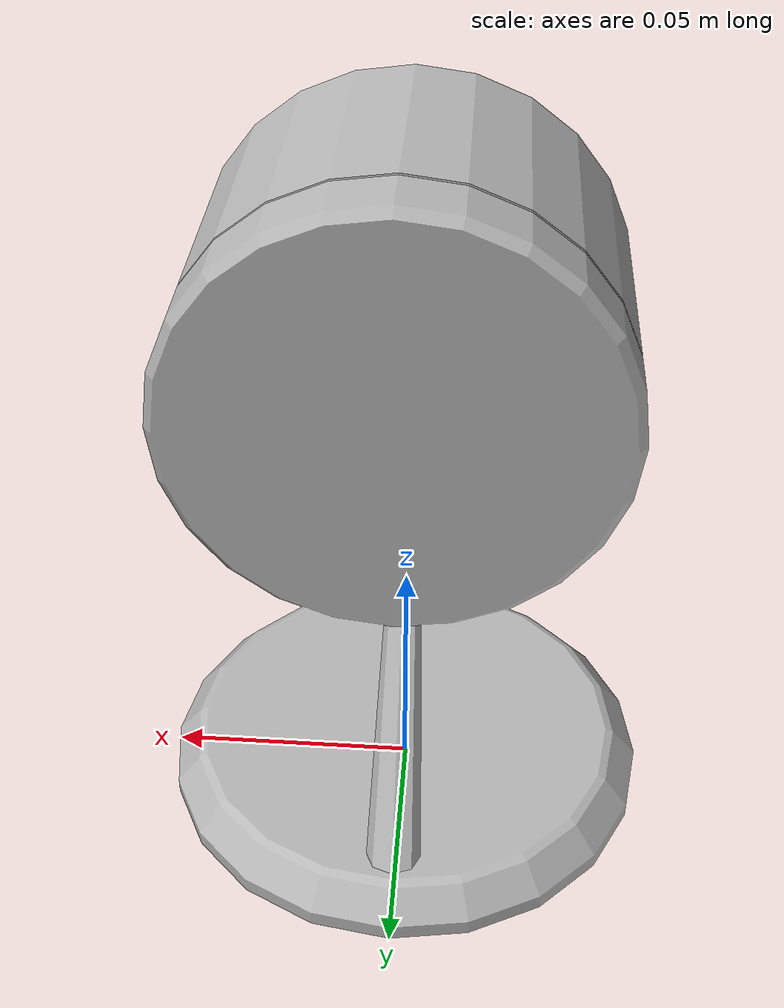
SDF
<?xml version="1.0" ?>
<sdf version="1.6">
  <model name="aws_robomaker_retail_SecurityCamera_01">
    <link name="link">
      <inertial>
        <mass>1</mass>
        <inertia>
          <ixx>18.2222</ixx>
          <ixy>0</ixy>
          <ixz>0</ixz>
          <iyy>18.2222</iyy>
          <iyz>0</iyz>
          <izz>0.0018767</izz>
        </inertia>
      </inertial>
      <collision name="collision">
        <geometry>
          <mesh>
            <uri>file://models/aws_robomaker_retail_SecurityCamera_01/meshes/aws_SecurityCamera_01_collision.DAE</uri>
            <scale>1 1 1</scale>
          </mesh>
        </geometry>
      </collision>
      <visual name="visual">
	    <geometry>
          <mesh>
            <uri>file://models/aws_robomaker_retail_SecurityCamera_01/meshes/aws_SecurityCamera_01_visual.DAE</uri>
          </mesh>
        </geometry>
        <meta>
          <layer>2</layer>
        </meta>
      </visual>
    </link>
    <static>1</static>
  </model>
</sdf>
